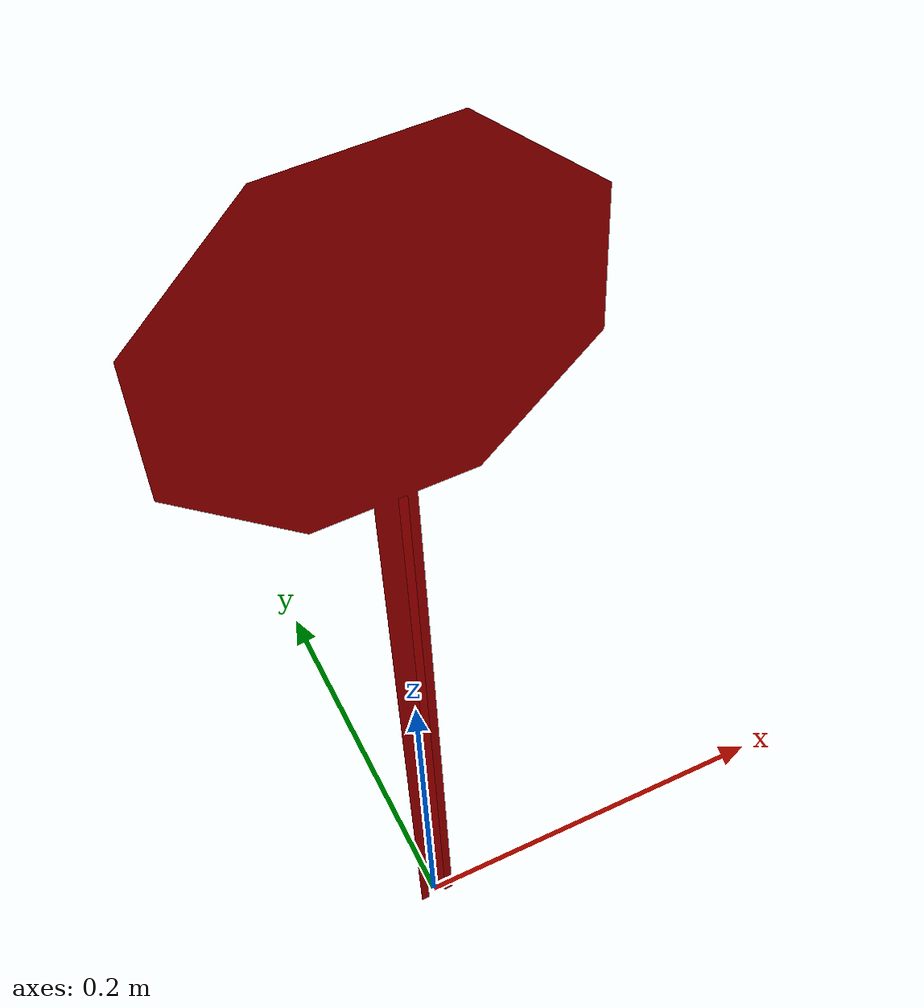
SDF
<?xml version="1.0" ?>
<sdf version="1.5">
  <model name="Stop Sign">
    <static>true</static>
    <link name="link">
      <collision name="collision">
        <geometry>
          <mesh>
            <uri>model://stop_sign/meshes/stop_sign.dae</uri>
            <scale>0.3 0.3 0.3</scale>
          </mesh>
        </geometry>
      </collision>
      <visual name="visual">
        <geometry>
          <mesh>
            <uri>model://stop_sign/meshes/stop_sign.dae</uri>
            <scale>0.3 0.3 0.3</scale>
          </mesh>
        </geometry>
        <material>
          <script>
            <uri>model://stop_sign/materials/scripts</uri>
            <uri>model://stop_sign/materials/textures</uri>
            <name>StopSign/Diffuse</name>
          </script>
          <ambient>0.8 0.0 0.0 1</ambient> <diffuse>0.8 0.0 0.0 1</diffuse>
        </material>
      </visual>
    </link>
  </model>
</sdf>
